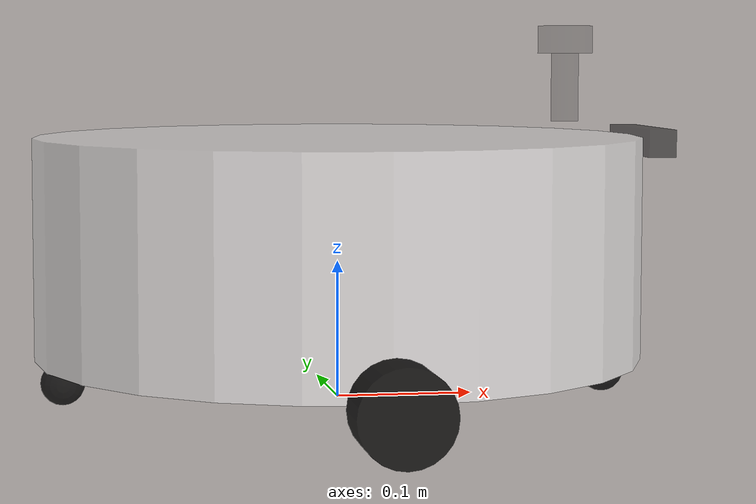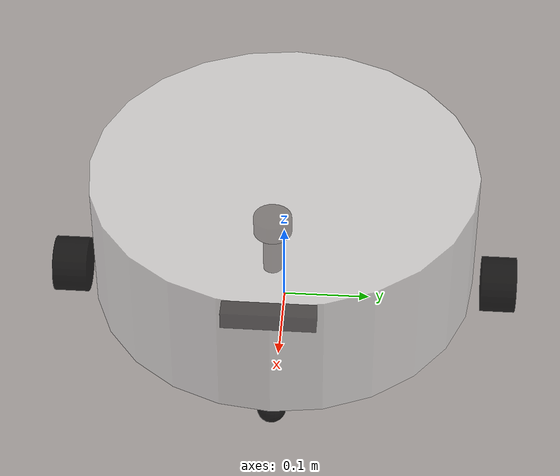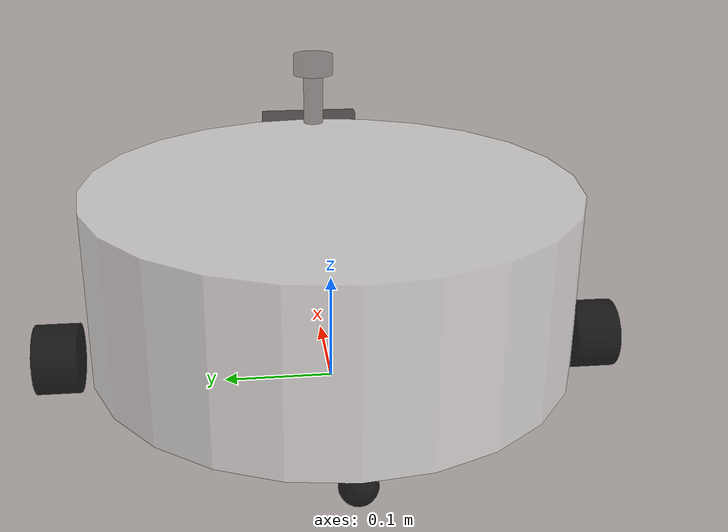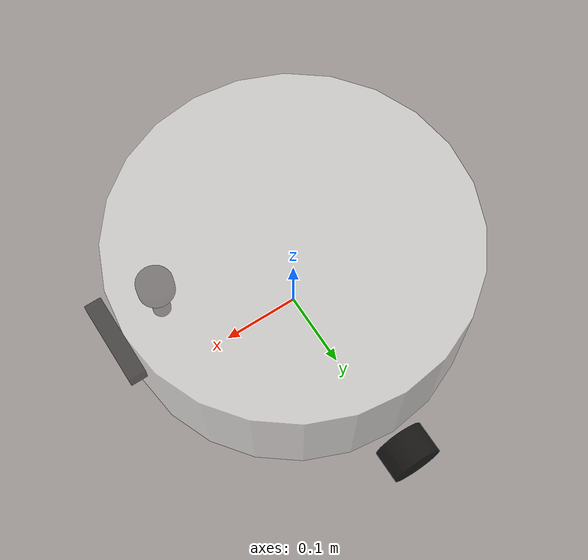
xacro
<?xml version="1.0"?>
<robot name="project_robot" xmlns:xacro='http://www.ros.org/wiki/xacro'>
    <!-- 相当于导入文件 -->
    <!-- find命令用于找到功能包下的share目录 -->
    <!-- 基础部件 -->
    <xacro:include filename='$(find robot)/urdf/project_robot/base.urdf.xacro'/>
    <!-- 传感器部件 -->
    <xacro:include filename='$(find robot)/urdf/project_robot/sensor/camera.urdf.xacro'/>
    <xacro:include filename='$(find robot)/urdf/project_robot/sensor/imu.urdf.xacro'/>
    <xacro:include filename='$(find robot)/urdf/project_robot/sensor/laser.urdf.xacro'/>
    <!-- 执行器部分 -->
    <xacro:include filename='$(find robot)/urdf/project_robot/actuator/wheel.urdf.xacro'/>
    <xacro:include filename='$(find robot)/urdf/project_robot/actuator/caster.urdf.xacro'/>
    <!-- 插件 -->
    <!-- 两轮差速插件与ros2_control配件冲突 -->
    <xacro:include filename='$(find robot)/urdf/project_robot/plugins/gazebo_sensor_plugin.xacro'/>
    <xacro:include filename='$(find robot)/urdf/project_robot/ros2_control.xacro'/>
    <!-- panda arm robot -->
    <xacro:include filename='$(find panda_description)/urdf/panda.urdf.xacro'/>

    <!-- 使用宏 -->
    <!-- 使用宏传入坐标时要使轮子在一个地面 调试中修改 -->
    <xacro:base_xacro length='0.16' radius='0.22'/>
    <xacro:imu_xacro xyz='0.0 0.0 0.02'/>
    <xacro:camera_xacro xyz='0.23 0.0 0.075'/>
    <xacro:laser_xacro xyz='0.17 0.0 0.12'/>
    <xacro:wheel_xacro wheel_name='left_wheel' xyz='0 0.25 -0.08'/>
    <xacro:wheel_xacro wheel_name='right_wheel' xyz='0 -0.25 -0.08'/>
    <xacro:caster_xacro caster_name='front_caster' xyz='0.2 0 -0.096'/>
    <xacro:caster_xacro caster_name='back_caster' xyz='-0.2 0 -0.096'/>
    <xacro:gazebo_sensor_plugin/>
    <xacro:ros2_control/>
    <!--机械臂 -->
</robot>

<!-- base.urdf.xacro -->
<robot xmlns:xacro='http://www.ros.org/wiki/xacro'>
    <!-- 引入宏文件 -->
    <xacro:include filename='$(find robot)/urdf/project_robot/common_inertial.xacro'/>
    <!-- /home/ros/project/project_ws/install/robot/share/robot/urdf/project_robot/common_inertia.xacro -->

    <xacro:macro name="base_xacro" params='length radius'>
        <!-- 虚拟部件 不存在实际内容 -->
        <!-- 记得在rviz2中改变坐标原点参照位置 -->
        <link name="base_footprint"/>
        <link name="base_link">
            <!--描述-->
            <visual>
                <origin xyz="0.0 0.0 0.0" rpy="0.0 0.0 0.0"/>
                <geometry>
                    <cylinder radius="${radius}" length="${length}"/>
                </geometry>
                <material name = 'white'>
                    <color rgba="1.0 1.0 1.0 0.5"/>
                </material>
            </visual>
            <!-- 碰撞体积 -->
            <collision>
                <origin xyz="0.0 0.0 0.0" rpy="0.0 0.0 0.0"/>
                <geometry>
                    <cylinder radius="${radius}" length="${length}"/>
                </geometry>
                <material name = 'white'>
                    <color rgba="1.0 1.0 1.0 0.5"/>
                </material>
            </collision>

            <!-- 添加惯性矩阵 -->
            <xacro:cylinder_inertia m='1.0' r='${radius}' h='${length}'/>
        </link>

        <!-- 关节 -->
        <!-- 仅在z轴作投影 -->
        <joint name="base_joint" type="fixed">
            <origin xyz="0.0 0.0 ${length/2.0+0.032-0.001}" rpy="0.0 0.0 0.0"/>
            <parent link="base_footprint"/>
            <child link="base_link"/>
        </joint>

        <!-- gazebo标签 扩展以显现其他属性 -->
        <gazebo reference='base_link'>
            <material>Gazebo/Blue</material>
        </gazebo>
    </xacro:macro>
</robot>
<!-- 基础部件宏 -->

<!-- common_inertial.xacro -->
<robot xmlns:xacro="http://ros.org/wiki/xacro">
    <xacro:macro name="box_inertia" params="m w h d">
        <inertial>
            <mass value="${m}" />
            <inertia ixx="${(m/12) * (h*h + d*d)}" ixy="0.0" ixz="0.0" iyy="${(m/12) * (w*w + d*d)}" iyz="0.0" izz="${(m/12) * (w*w + h*h)}" />
        </inertial>
    </xacro:macro>

    <xacro:macro name="cylinder_inertia" params="m r h">
        <inertial>
            <mass value="${m}" />
            <inertia ixx="${(m/12) * (3*r*r + h*h)}" ixy="0.0" ixz="0.0" iyy="${(m/12) * (3*r*r + h*h)}" iyz="0.0" izz="${(m/2) * (r*r)}" />
        </inertial>
    </xacro:macro>

    <xacro:macro name="sphere_inertia" params="m r">
        <inertial>
            <mass value="${m}" />
            <inertia ixx="${(2/5) * m * (r*r)}" ixy="0.0" ixz="0.0" iyy="${(2/5) * m * (r*r)}" iyz="0.0" izz="${(2/5) * m * (r*r)}" />
        </inertial>
    </xacro:macro>
</robot>

<!-- 旋转惯性定义宏 -->

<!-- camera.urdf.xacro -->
<robot xmlns:xacro='http://www.ros.org/wiki/xacro'>
    <!-- 引入宏文件 -->
    <xacro:include filename='$(find robot)/urdf/project_robot/common_inertial.xacro'/>

    <xacro:macro name='camera_xacro' params='xyz'>
        <link name="camera_link">
            <!--描述-->
            <visual>
                <origin xyz="0.0 0.0 0.0" rpy="0.0 0.0 0.0"/>
                <geometry>
                    <box size="0.02 0.10 0.02"/>
                </geometry>
                <material name = 'black'>
                    <color rgba="0.0 0.0 0.0 0.5"/>
                </material>
            </visual>
            <collision>
                <origin xyz="0.0 0.0 0.0" rpy="0.0 0.0 0.0"/>
                <geometry>
                    <box size="0.02 0.10 0.02"/>
                </geometry>
                <material name = 'black'>
                    <color rgba="0.0 0.0 0.0 0.5"/>
                </material>
            </collision>
            <!-- 惯性质量 -->
            <xacro:box_inertia m='0.1' w='0.02' h='0.10' d='0.02'/>
        </link>

        <!-- 虚拟部件 修正相机朝向  由于深度相机默认z轴朝前-->
        <link name="camera_optical_link"></link>

        <joint name="camera_joint" type="fixed">
            <origin xyz="${xyz}" rpy="0.0 0.0 0.0"/>
            <parent link="base_link"/>
            <child link="camera_link"/>
        </joint>

        <joint name="camera_optical_joint" type="fixed">
            <origin xyz="0.0 0.0 0.0" rpy="${-pi/2} 0.0 ${-pi/2}"/>
            <parent link="camera_link"/>
            <child link="camera_optical_link"/>
        </joint>

        <!-- gazebo标签 扩展以显现其他属性 -->
        <gazebo reference='camera_link'>
            <material>Gazebo/White</material>
        </gazebo>
    </xacro:macro>
</robot>
<!-- 相机部件宏 -->

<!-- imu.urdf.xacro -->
<robot xmlns:xacro='http://www.ros.org/wiki/xacro'>
    <!-- 引入宏文件 -->
    <xacro:include filename='$(find robot)/urdf/project_robot/common_inertial.xacro'/>

    <xacro:macro name='imu_xacro' params='xyz'>
        <link name="imu_link">
            <!--描述-->
            <visual>
                <origin xyz="0.0 0.0 0.0" rpy="0.0 0.0 0.0"/>
                <geometry>
                    <box size="0.04 0.04 0.04"/>
                </geometry>
                <material name = 'black'>
                    <color rgba="0.0 0.0 0.0 0.5"/>
                </material>
            </visual>
            <collision>
                <origin xyz="0.0 0.0 0.0" rpy="0.0 0.0 0.0"/>
                <geometry>
                    <box size="0.04 0.04 0.04"/>
                </geometry>
                <material name = 'black'>
                    <color rgba="0.0 0.0 0.0 0.5"/>
                </material>
            </collision>
            <!-- 惯性质量 -->
            <xacro:box_inertia m='0.05' w='0.02' h='0.02' d='0.02'/>
        </link>

        <joint name="imu_joint" type="fixed">
            <origin xyz="${xyz}" rpy="0.0 0.0 0.0"/>
            <parent link="base_link"/>
            <child link="imu_link"/>
        </joint>
    </xacro:macro>
</robot>
<!-- 传感器部件宏 -->

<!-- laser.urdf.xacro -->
<robot xmlns:xacro='http://www.ros.org/wiki/xacro'>
    <!-- 引入宏文件 -->
    <xacro:include filename='$(find robot)/urdf/project_robot/common_inertial.xacro'/>

    <xacro:macro name='laser_xacro' params='xyz'>
        <!-- 雷达支撑杆 -->
        <link name="laser_cylinder_link">
            <!--描述-->
            <visual>
                <origin xyz="0.0 0.0 0.0" rpy="0.0 0.0 0.0"/>
                <geometry>
                        <cylinder radius="0.01" length="0.06"/>
                </geometry>
                <material name = 'black'>
                    <color rgba="0.0 0.0 0.0 0.10"/>
                </material>
            </visual>
            <collision>
                <origin xyz="0.0 0.0 0.0" rpy="0.0 0.0 0.0"/>
                <geometry>
                        <cylinder radius="0.01" length="0.06"/>
                </geometry>
                <material name = 'black'>
                    <color rgba="0.0 0.0 0.0 0.10"/>
                </material>
            </collision>
            <!-- 质量惯性 -->
            <xacro:cylinder_inertia m='0.05' r='0.01' h='0.10'/>
        </link>

        <!-- 雷达 -->
        <link name="laser_link">
            <!--描述-->
            <visual>
                <origin xyz="0.0 0.0 0.0" rpy="0.0 0.0 0.0"/>
                <geometry>
                        <cylinder radius="0.02" length="0.02"/>
                </geometry>
                <material name = 'black'>
                    <color rgba="0.0 0.0 0.0 0.10"/>
                </material>
            </visual>
            <collision>
                <origin xyz="0.0 0.0 0.0" rpy="0.0 0.0 0.0"/>
                <geometry>
                        <cylinder radius="0.02" length="0.02"/>
                </geometry>
                <material name = 'black'>
                    <color rgba="0.0 0.0 0.0 0.10"/>
                </material>
            </collision>
            <!-- 质量惯性 -->
            <xacro:cylinder_inertia m='0.10' r='0.02' h='0.02'/>
        </link>

        <joint name="laser_joint" type="fixed">
            <!-- 计算雷达杆几何中心 将雷达固定到雷达杆上 -->
            <origin xyz="0.0 0.0 0.03" rpy="0.0 0.0 0.0"/>
            <parent link="laser_cylinder_link"/>
            <child link="laser_link"/>
        </joint>

        <!-- 固定整体到基础部件上 -->
        <joint name="laser_cylinder_joint" type="fixed">
            <origin xyz="${xyz}" rpy="0.0 0.0 0.0"/>
            <parent link="base_link"/>
            <child link="laser_cylinder_link"/>
        </joint>

        <!-- gazebo标签 扩展以显现颜色 -->
        <gazebo reference='laser_cylinder_link'>
            <material>Gazebo/White</material>
        </gazebo>
        <gazebo reference='laser_link'>
            <material>Gazebo/White</material>
        </gazebo>

    </xacro:macro>
</robot>
<!-- 传感器部件宏 -->

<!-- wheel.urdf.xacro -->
<robot xmlns:xacro='http://www.ros.org/wiki/xacro'>
    <!-- 引入宏文件 -->
    <xacro:include filename='$(find robot)/urdf/project_robot/common_inertial.xacro'/>

    <!-- 此处轮子要复用 为了遵守规范 传入名字参数 -->
    <xacro:macro name='wheel_xacro' params='wheel_name xyz'>
        <link name="${wheel_name}_link">
            <!--描述-->
            <visual>
                <!-- 旋转以正确摆放轮子 -->
                <origin xyz="0.0 0.0 0.0" rpy="1.57079 0.0 0.0"/>
                <geometry>
                        <cylinder radius="0.032" length="0.04"/>
                </geometry>
                <material name = 'black'>
                    <color rgba="0.0 0.0 0.0 0.8"/>
                </material>
            </visual>
            <collision>
                <origin xyz="0.0 0.0 0.0" rpy="1.57079 0.0 0.0"/>
                <geometry>
                        <cylinder radius="0.032" length="0.04"/>
                </geometry>
                <material name = 'black'>
                    <color rgba="0.0 0.0 0.0 0.8"/>
                </material>
            </collision>
            <!-- 惯性质量 -->
            <xacro:cylinder_inertia m='0.05' r='0.032' h='0.04'/>
        </link>

        <!-- 关节 -->
        <joint name="${wheel_name}_joint" type="continuous">
            <origin xyz="${xyz}" rpy="0.0 0.0 0.0"/>
            <parent link="base_link"/>
            <child link="${wheel_name}_link"/>
            <axis xyz="0 1 0"/>
        </joint>

        <!-- gazebo标签 扩展以显现其他属性 -->
        <gazebo reference='${wheel_name}_link'>
            <material>Gazebo/White</material>
            <!-- 切向摩擦系数 -->
            <mu1 value='20.0'/>
            <!-- 把向摩擦系数 -->
            <mu2 value='20.0'/>
            <!-- 接触刚度系数 -->
            <kp value='1000000000.0'/>
            <!-- 阻尼系数 -->
            <kd value='1.0'/>
        </gazebo>

    </xacro:macro>
</robot>
<!-- 驱动轮部件宏 -->

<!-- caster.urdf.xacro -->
<robot xmlns:xacro='http://www.ros.org/wiki/xacro'>
    <!-- 引入宏文件 -->
    <xacro:include filename='$(find robot)/urdf/project_robot/common_inertial.xacro'/>

    <!-- 此处轮子要复用 为了遵守规范 传入名字参数 -->
    <xacro:macro name='caster_xacro' params='caster_name xyz'>
        <link name="${caster_name}_link">
            <!--描述-->
            <visual>
                <!-- 旋转以正确摆放轮子 -->
                <origin xyz="0.0 0.0 0.0" rpy="1.57079 0.0 0.0"/>
                <geometry>
                        <sphere radius="0.016"/>
                </geometry>
                <material name = 'black'>
                    <color rgba="0.0 0.0 0.0 0.8"/>
                </material>
            </visual>
            <collision>
                <origin xyz="0.0 0.0 0.0" rpy="1.57079 0.0 0.0"/>
                <geometry>
                        <sphere radius="0.016"/>
                </geometry>
                <material name = 'black'>
                    <color rgba="0.0 0.0 0.0 0.8"/>
                </material>
            </collision>
            <!-- 惯性质量 -->
            <xacro:sphere_inertia m='0.05' r='0.016'/>
        </link>

        <!-- 关节 -->
        <joint name="${caster_name}_joint" type="fixed">
            <origin xyz="${xyz}" rpy="0.0 0.0 0.0"/>
            <parent link="base_link"/>
            <child link="${caster_name}_link"/>
        </joint>

        <!-- gazebo标签 扩展以显现其他属性 -->
        <gazebo reference='${caster_name}_link'>
            <material>Gazebo/White</material>
            <!-- 切向摩擦系数 -->
            <mu1 value='0.0'/>
            <!-- 把向摩擦系数 -->
            <mu2 value='0.0'/>
            <!-- 接触刚度系数 -->
            <kp value='1000000000.0'/>
            <!-- 阻尼系数 -->
            <kd value='1.0'/>
        </gazebo>

    </xacro:macro>
</robot>
<!-- 外部轮部件宏 -->
